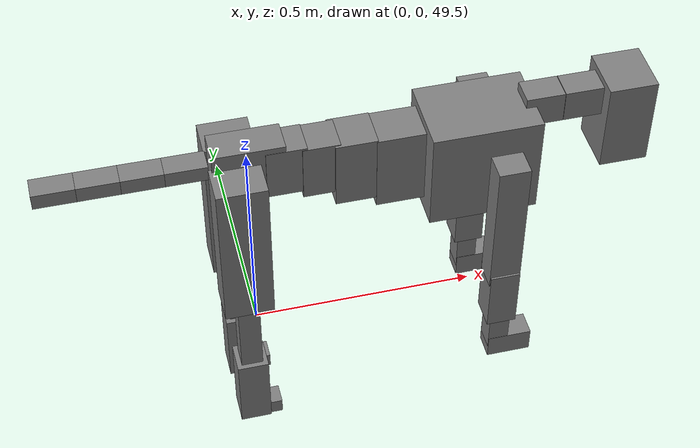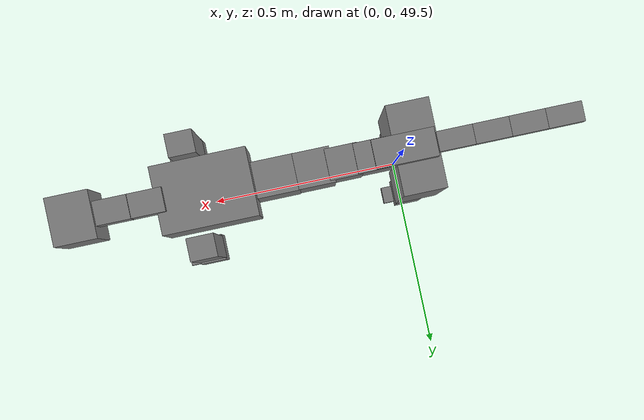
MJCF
<mujoco model="dog">

    <default>
        <joint armature="0.02" stiffness="1" damping="0.2" limited="true"/>
        <geom condim="3" friction="1 0.05 0.05" margin="0.01"/>
        <motor ctrllimited="true" ctrlrange="-1.0 1.0" forcelimited="true" gear="50"/>
    </default>

    <compiler inertiafromgeom="true" angle="radian"/>

    <option timestep="0.016" iterations="50" tolerance="1e-10" solver="Newton" jacobian="dense" cone="pyramidal"/>

    <size nconmax="20000" njmax="60000" nstack="5000000"/>
    <visual>
        <map force="0.1" zfar="30"/>
        <rgba haze="0.15 0.25 0.35 1"/>
        <quality shadowsize="2048"/>
        <global offwidth="800" offheight="800"/>
    </visual>

    <asset>
        <texture type="skybox" builtin="gradient" rgb1="0.3 0.5 0.7" rgb2="0 0 0" width="512" height="512"/>
        <texture name="texplane" type="2d" builtin="checker" rgb1=".2 .3 .4" rgb2=".1 0.15 0.2" width="512" height="512"
                 mark="cross" markrgb=".8 .8 .8"/>
        <texture name="texgeom" type="cube" builtin="flat" mark="cross" width="127" height="1278" rgb1="0.8 0.6 0.4"
                 rgb2="0.8 0.6 0.4" markrgb="1 1 1" random="0.01"/>

        <material name="matplane" reflectance="0.3" texture="texplane" texrepeat="1 1" texuniform="true"/>
        <material name="matgeom" texture="texgeom" texuniform="true" rgba="0.8 0.6 .4 1"/>
    </asset>

    <worldbody>
        <geom name="floor" pos="0 0 0" size="0 0 .25" type="plane" material="matplane" condim="3"/>

        <light directional="false" diffuse=".2 .2 .2" specular="0 0 0" pos="0 0 5" dir="0 0 -1" castshadow="false"/>
        <light mode="targetbodycom" target="torso" directional="false" diffuse=".8 .8 .8" specular="0.3 0.3 0.3"
               pos="0 0 4.0" dir="0 0 -1"/>

        <body name="root" pos="0 0 50">
            <freejoint name="root_1"/>
            <geom type="box" pos="0 0 -0.02" size="0.0774  0.0358  0.063" density="2030"/>

            <body name="spine1" pos="0.054 0 0">
                <joint name="spine1_y" axis="0 1 0" range="0 0.7" limited="true"/>
                <geom type="box" pos="0.02375 0 -0.03" size="0.04375  0.0375  0.05985" density="2030"/>

                <body name="spine2" pos="0.0612 0 0">
                    <joint name="spine2_y" axis="0 1 0" range="-0.15 0.15" limited="true"/>
                    <geom type="box" pos="0.03555  0  -0.04" size="0.04055  0.039  0.06615" density="2030"/>

                    <body name="spine3" pos="0.0730 0 0">
                        <joint name="spine3_y" axis="0 1 0" range="-0.15 0.15" limited="true"/>
                        <geom type="box" pos="0.03555  0  -0.057" size="0.04555  0.0445  0.081" density="2030"/>

                        <body name="spine4" pos="0.0780 0 0">
                            <joint name="spine4_y" axis="0 1 0" range="-0.15 0.15" limited="true"/>
                            <geom type="box" pos="0.05265  0  -0.07" size="0.05265  0.045  0.09135" density="2030"/>

                            <body name="torso" pos="0.1082 0 0">
                                <joint name="torso_y" axis="0 1 0" range="-0.15 0.15" limited="true"/>
                                <geom type="box" pos="0.11925  0  -0.085" size="0.11925  0.085  0.11745"
                                      density="2030"/>

                                <body name="neck1" pos="0.2160  0   0.0180">
                                    <joint name="neck1_y" axis="0 1 0" range="-1.2  -1" limited="true"/>
                                    <geom type="box" pos="0.0423  0  0" size="0.0423  0.03  0.036" density="2325"/>

                                    <body name="neck2" pos="0.0853  0  0">
                                        <joint name="neck2_y" axis="0 1 0" range="0.1  0" limited="true"/>
                                        <geom type="box" pos="0.0423  0  0" size="0.0423  0.03  0.036" density="2325"/>

                                        <body name="head" pos="0.0853  0  0">
                                            <joint name="head_y" axis="0 1 0" range="-0.3  -0.2" limited="true"/>
                                            <geom type="box" pos="0.0531  0  -0.055" size="0.0531  0.06  0.1044"
                                                  density="4030"/>

                                        </body>
                                    </body>
                                </body>

                                <body name="front_shoulder" pos="0.156  0   -0.0480">
                                    <joint name="front_shoulder_y" axis="0 1 0" range="-1 1.5" limited="true"/>
                                    <geom type="box" pos="0 0.13 -0.1422" size="0.0344  0.0294  0.1689" density="1158"/>
                                    <geom type="box" pos="0 -0.13 -0.1422" size="0.0344  0.0294  0.1689"
                                          density="1158"/>

                                    <body name="front_elbow" pos="0  0  -0.2844">
                                        <joint name="front_elbow_y" axis="0 1 0" range="-2 0" limited="true"/>
                                        <geom type="box" pos="0 0.13 -0.0753" size="0.0332  0.0340  0.0753"
                                              density="1081"/>
                                        <geom type="box" pos="0 -0.13 -0.0753" size="0.0332  0.0340  0.0753"
                                              density="1081"/>

                                        <body name="front_wrist" pos="0  0  -0.1507">
                                            <joint name="front_wrist_y" axis="0 1 0" range="-0.2 0" limited="true"/>
                                            <geom type="box" pos="0 0.13 -0.0391" size="0.0230  0.0255  0.0522"
                                                  density="1664"/>
                                            <geom type="box" pos="0 -0.13 -0.0391" size="0.0230  0.0255  0.0522"
                                                  density="1664"/>

                                            <body name="front_finger_end" pos="0  0  -0.0782">
                                                <joint name="front_finger_y" axis="0 1 0" range="-0.4 1"
                                                       limited="true"/>
                                                <geom type="box" pos="0.0272  0.13  -0.0133"
                                                      size="0.0498  0.0272  0.0283" density="1515"/>
                                                <geom type="box" pos="0.0272  -0.13  -0.0133"
                                                      size="0.0498  0.0272  0.0283" density="1515"/>

                                            </body>

                                        </body>
                                    </body>
                                </body>

                            </body>
                        </body>
                    </body>
                </body>
            </body>

            <body name="back_hip" pos="-0.03 0 -0.018">
                <joint name="back_hip_y" axis="0 1 0" range="-1.5 0.3" limited="true"/>
                <geom type="box" pos="0 0.07 -0.1610" size="0.0544  0.0426  0.1838" density="1154"/>
                <geom type="box" pos="0 -0.07 -0.1610" size="0.0544  0.0426  0.1838" density="1154"/>

                <body name="back_knee" pos="0  0  -0.3221">
                    <joint name="back_knee_y" axis="0 1 0" range="0 2.8" limited="true"/>
                    <geom type="box" pos="0 0.07 -0.1119" size="0.0244  0.0240  0.1274" density="1227"/>
                    <geom type="box" pos="0 -0.07 -0.1119" size="0.0244  0.0240  0.1274" density="1227"/>

                    <body name="back_ankle" pos="0  0  -0.2237">
                        <joint name="back_ankle_y" axis="0 1 0" range="-2.2 0" limited="true"/>
                        <geom type="box" pos="0 0.07 -0.0812" size="0.0352  0.0352  0.0925" density="1284"/>
                        <geom type="box" pos="0 -0.07 -0.0812" size="0.0352  0.0352  0.0925" density="1284"/>

                        <body name="back_toe_end" pos="0  0  -0.1624">
                            <joint name="back_toe_y" axis="0 1 0" range="-0.4 1" limited="true"/>
                            <geom type="box" pos="0.0226  0.07  -0.0031" size="0.0414  0.0226  0.0181" density="1515"/>
                            <geom type="box" pos="0.0226  -0.07  -0.0031" size="0.0414  0.0226  0.0181" density="1515"/>

                        </body>
                    </body>
                </body>
            </body>

            <body name="tail1" pos="-0.074 0 -0.006">
                <joint name="tail1_y" axis="0 1 0" range="-0.2 0.2" limited="true"/>
                <geom type="box" pos="-0.0536  0  0" size="0.045  0.025  0.0175" density="1587"/>

                <body name="tail2" pos="-0.09 0 0">
                    <joint name="tail2_y" axis="0 1 0" range="-0.2 0.2" limited="true"/>
                    <geom type="box" pos="-0.0536  0  0" size="0.045  0.025  0.0175" density="1587"/>

                    <body name="tail3" pos="-0.09 0 0">
                        <joint name="tail3_y" axis="0 1 0" range="-0.2 0.2" limited="true"/>
                        <geom type="box" pos="-0.0536  0  0" size="0.045  0.025  0.0175" density="1587"/>

                        <body name="tail4" pos="-0.09 0 0">
                            <joint name="tail4_y" axis="0 1 0" range="-0.2 0.2" limited="true"/>
                            <geom type="box" pos="-0.0536  0  0" size="0.045  0.025  0.0175" density="1587"/>

                        </body>
                    </body>
                </body>
            </body>
        </body>
    </worldbody>

    <actuator>
        <motor joint="spine1_y" forcerange="-150 150     "/>
        <motor joint="spine2_y" forcerange="-150 150     "/>
        <motor joint="spine3_y" forcerange="-150 150     "/>
        <motor joint="spine4_y" forcerange="-150 150     "/>
        <motor joint="torso_y" forcerange="-150 150     "/>
        <motor joint="neck1_y" forcerange="-100 100       "/>
        <motor joint="neck2_y" forcerange="-100 100       "/>
        <motor joint="head_y" forcerange="-150 150       "/>
        <motor joint="front_shoulder_y" forcerange="-150.75 145.11"/>
        <motor joint="front_elbow_y" forcerange="-192.98 154.04"/>
        <motor joint="front_wrist_y" forcerange="-101.62 102.71"/>
        <motor joint="front_finger_y" forcerange="-74.07 30.93"/>
        <motor joint="back_hip_y" forcerange="-372.98 395.43"/>
        <motor joint="back_knee_y" forcerange="-305.41 243.89"/>
        <motor joint="back_angle_y" forcerange="-240.59 222.18"/>
        <motor joint="back_toe_y" forcerange="-44.48 56.06"/>
        <motor joint="tail1_y" forcerange="-50 50     "/>
        <motor joint="tail2_y" forcerange="-50 50     "/>
        <motor joint="tail3_y" forcerange="-50 50     "/>
        <motor joint="tail4_y" forcerange="-50 50     "/>
    </actuator>
</mujoco>
